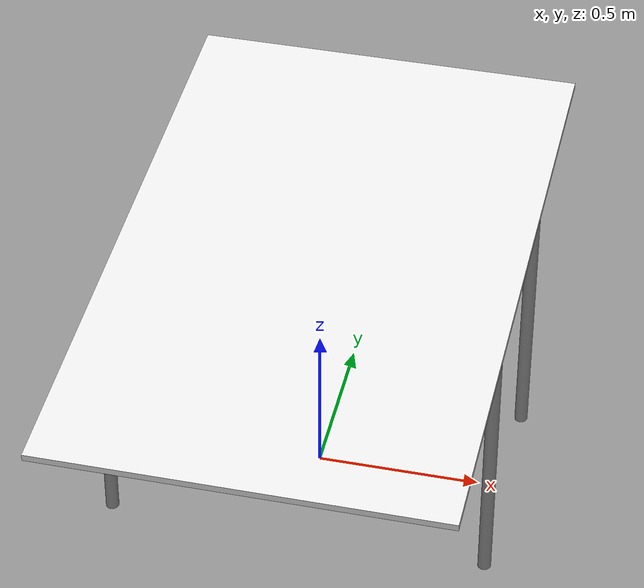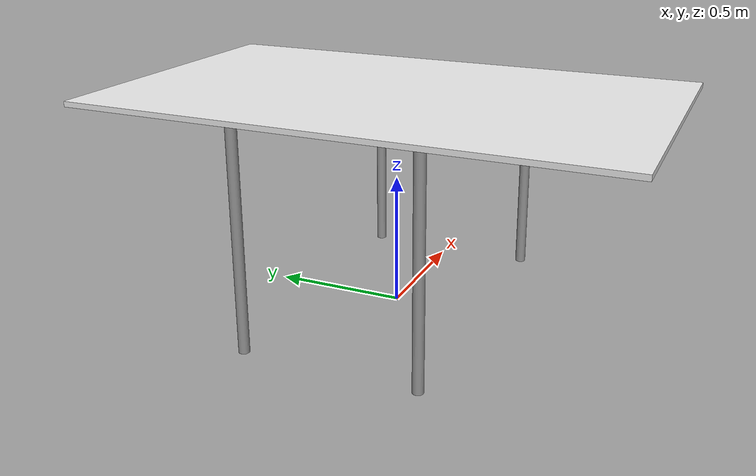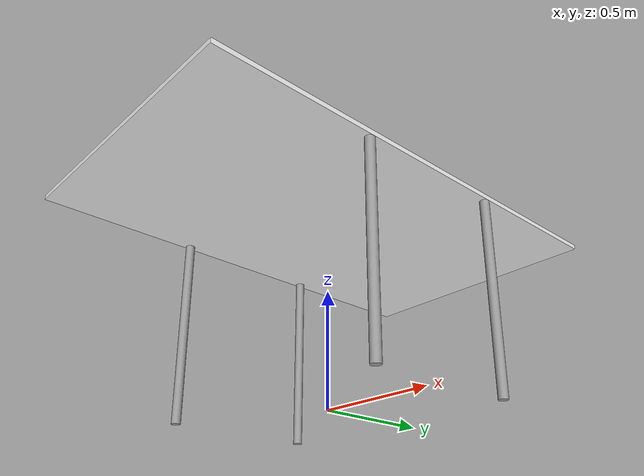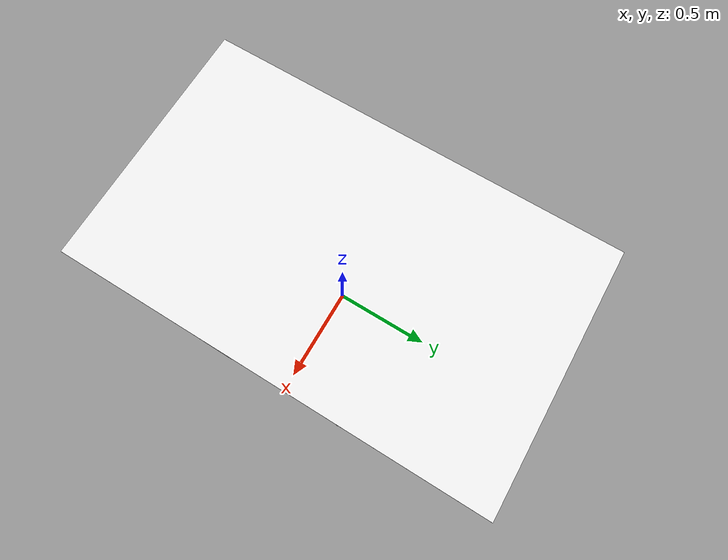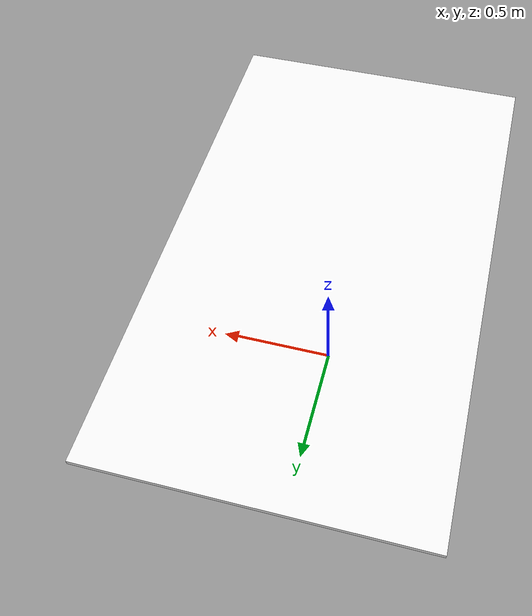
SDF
<?xml version="1.0" ?>
<sdf version='1.4'>
<model name='table'>
      <static>1</static>
      <link name='link'>
        <collision name='surface'>
          <pose>0.000000 0.000000 0.820000 0.000000 0.000000 0.000000</pose>
          <geometry>
            <box>
              <size>1.200000 2.000000 0.020000</size>
            </box>
          </geometry>
          <surface>
            <bounce/>
            <friction>
              <ode/>
            </friction>
            <contact>
              <ode/>
            </contact>
          </surface>
        </collision>
        <visual name='visual1'>
          <pose>0.000000 0.000000 0.820000 0.000000 0.000000 0.000000</pose>
          <geometry>
            <box>
              <size>1.200000 2.000000 0.020000</size>
            </box>
          </geometry>
          <material>
            <script>
              <uri>file://media/materials/scripts/gazebo.material</uri>
              <name>Gazebo/white</name>
            </script>
          </material>
        </visual>
        <collision name='front_left_leg'>
          <pose>0.580000 0.330000 0.400000 0.000000 0.000000 0.000000</pose>
          <geometry>
            <cylinder>
              <radius>0.020000</radius>
              <length>0.820000</length>
            </cylinder>
          </geometry>
          <surface>
            <bounce/>
            <friction>
              <ode/>
            </friction>
            <contact>
              <ode/>
            </contact>
          </surface>
        </collision>
        <visual name='front_left_leg'>
          <pose>0.580000 0.330000 0.400000 0.000000 0.000000 0.000000</pose>
          <geometry>
            <cylinder>
              <radius>0.020000</radius>
              <length>0.820000</length>
            </cylinder>
          </geometry>
          <material>
            <script>
              <uri>file://media/materials/scripts/gazebo.material</uri>
              <name>Gazebo/Grey</name>
            </script>
          </material>
        </visual>
        <collision name='front_right_leg'>
          <pose>0.580000 -0.330000 0.400000 0.000000 0.000000 0.000000</pose>
          <geometry>
            <cylinder>
              <radius>0.020000</radius>
              <length>0.820000</length>
            </cylinder>
          </geometry>
          <surface>
            <bounce/>
            <friction>
              <ode/>
            </friction>
            <contact>
              <ode/>
            </contact>
          </surface>
        </collision>
        <visual name='front_right_leg'>
          <pose>0.580000 -0.330000 0.400000 0.000000 0.000000 0.000000</pose>
          <geometry>
            <cylinder>
              <radius>0.020000</radius>
              <length>0.820000</length>
            </cylinder>
          </geometry>
          <material>
            <script>
              <uri>file://media/materials/scripts/gazebo.material</uri>
              <name>Gazebo/Grey</name>
            </script>
          </material>
        </visual>
        <collision name='back_right_leg'>
          <pose>-0.580000 -0.330000 0.400000 0.000000 0.000000 0.000000</pose>
          <geometry>
            <cylinder>
              <radius>0.020000</radius>
              <length>0.820000</length>
            </cylinder>
          </geometry>
          <surface>
            <bounce/>
            <friction>
              <ode/>
            </friction>
            <contact>
              <ode/>
            </contact>
          </surface>
        </collision>
        <visual name='back_right_leg'>
          <pose>-0.580000 -0.330000 0.400000 0.000000 0.000000 0.000000</pose>
          <geometry>
            <cylinder>
              <radius>0.020000</radius>
              <length>0.820000</length>
            </cylinder>
          </geometry>
          <material>
            <script>
              <uri>file://media/materials/scripts/gazebo.material</uri>
              <name>Gazebo/Grey</name>
            </script>
          </material>
        </visual>
        <collision name='back_left_leg'>
          <pose>-0.580000 0.330000 0.400000 0.000000 0.000000 0.000000</pose>
          <geometry>
            <cylinder>
              <radius>0.020000</radius>
              <length>0.820000</length>
            </cylinder>
          </geometry>
          <surface>
            <bounce/>
            <friction>
              <ode/>
            </friction>
            <contact>
              <ode/>
            </contact>
          </surface>
        </collision>
        <visual name='back_left_leg'>
          <pose>-0.580000 0.330000 0.400000 0.000000 0.000000 0.000000</pose>
          <geometry>
            <cylinder>
              <radius>0.020000</radius>
              <length>0.820000</length>
            </cylinder>
          </geometry>
          <material>
            <script>
              <uri>file://media/materials/scripts/gazebo.material</uri>
              <name>Gazebo/Grey</name>
            </script>
          </material>
        </visual>
        <velocity_decay>
          <linear>0.000000</linear>
          <angular>0.000000</angular>
        </velocity_decay>
        <self_collide>0</self_collide>
        <kinematic>0</kinematic>
        <gravity>1</gravity>
      </link>
    </model>
</sdf>
